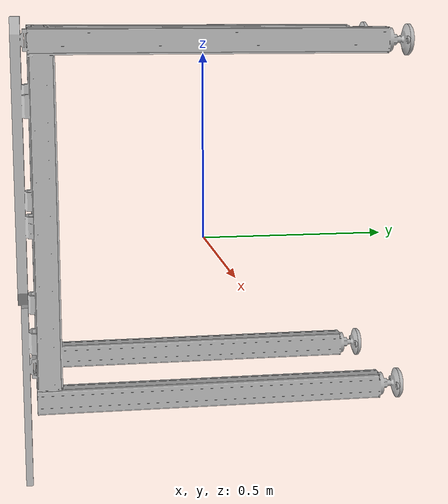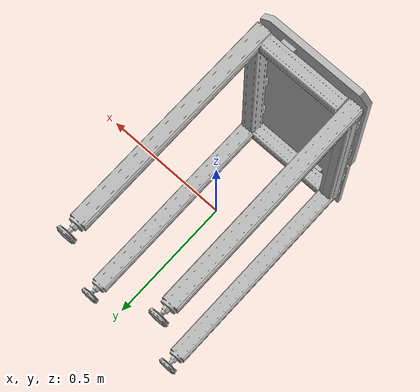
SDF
<?xml version="1.0"?>
<sdf version="1.9">
  <model name="kuka_table">
    <static>true</static>
    <link name="kuka_table_link">
      <visual name="kuka_table_visual">
        <geometry>
          <mesh>
            <uri>model://kuka_table/meshes/kuka_table.stl</uri>
          </mesh>
        </geometry>
      </visual>
      <collision name="kuka_table_collision">
        <geometry>
          <mesh>
            <uri>model://kuka_table/meshes/kuka_table.stl</uri>
          </mesh>
        </geometry>
      </collision>
    </link>
  </model>
</sdf>
